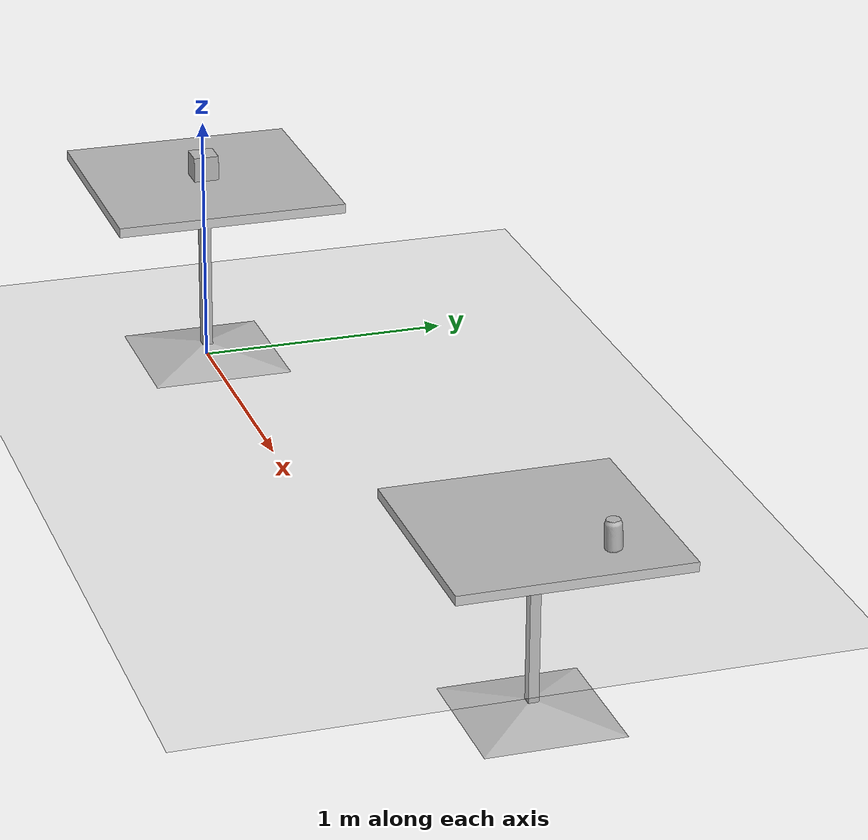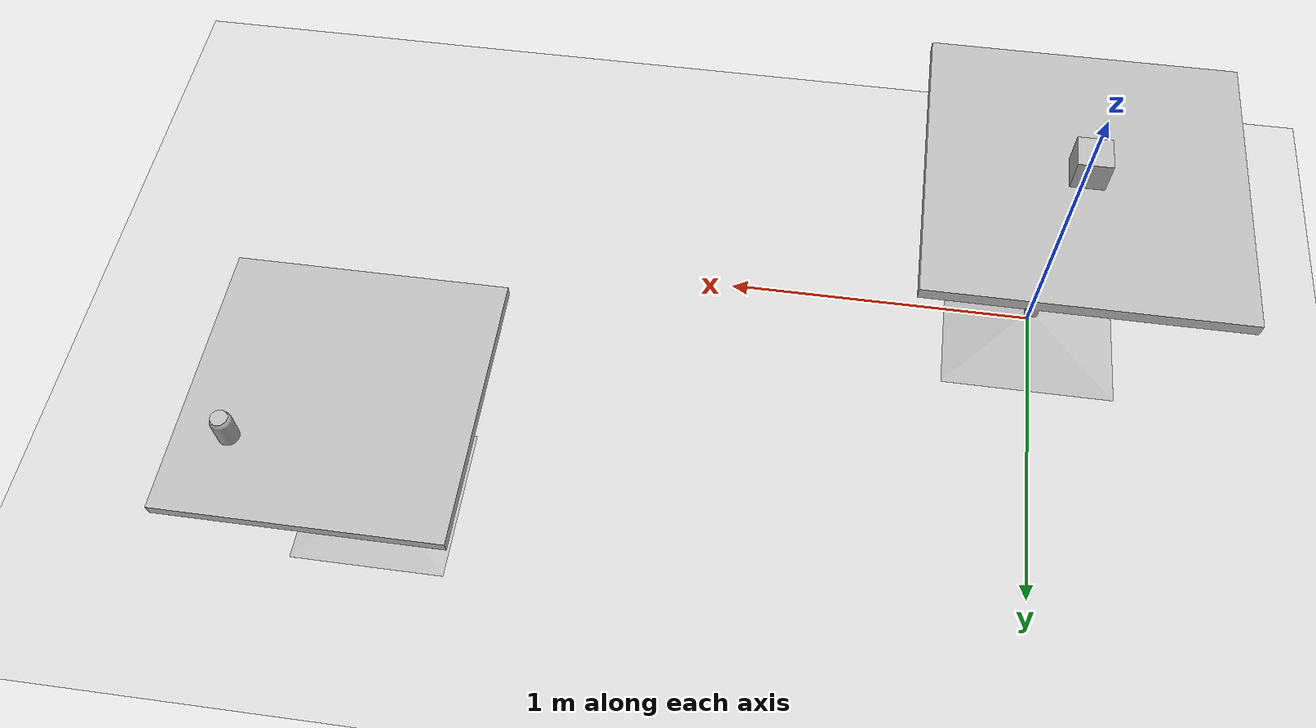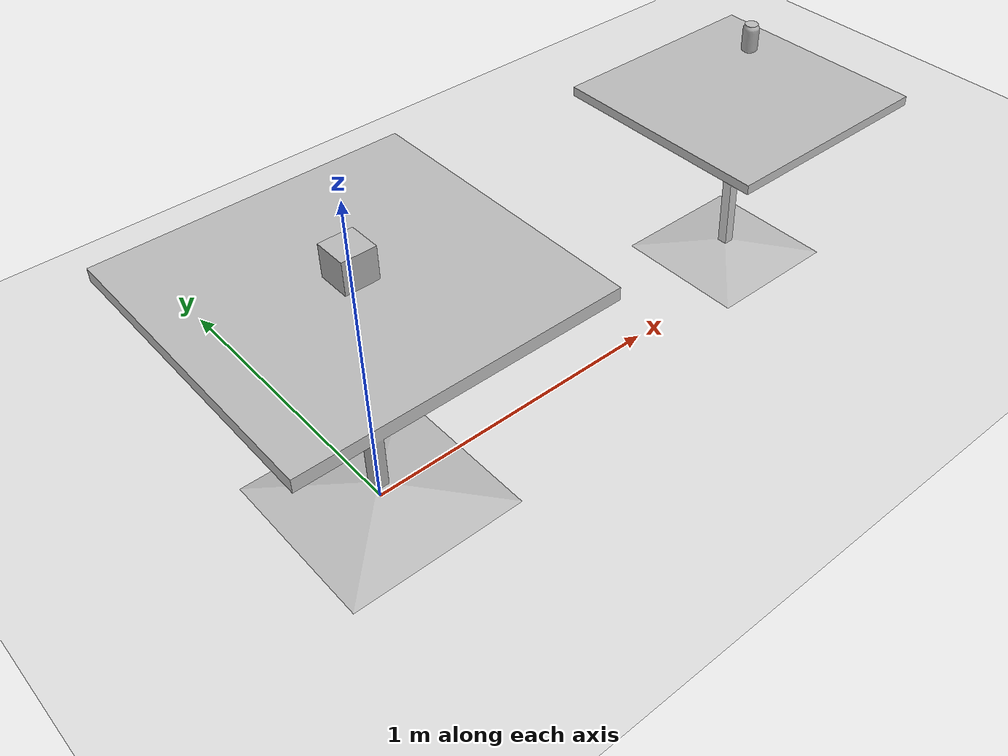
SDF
<sdf version="1.6">
 <world name="default">
  <model name="ground_plane">
   <static>1</static>
   <link name="link">
    <collision name="collision">
     <geometry><plane><normal>0 0 1</normal><size>100 100</size></plane></geometry>
     <surface>
      <contact><collide_bitmask>65535</collide_bitmask></contact>
      <friction><ode><mu>100</mu><mu2>50</mu2></ode></friction>
     </surface>
    </collision>
    <visual name="visual">
     <plugin name="panoramagrid" filename="libgazebo_hide_plugin.so"/>
     <cast_shadows>0</cast_shadows>
     <geometry><plane><normal>0 0 1</normal><size>100 100</size></plane></geometry>
     <material>
      <script><uri>file://media/materials/scripts/gazebo.material</uri><name>Gazebo/Grey</name></script>
     </material>
    </visual>
   </link>
  </model>
  <light name="sun" type="directional">
   <pose>0 0 10 0 -0 0</pose>
   <diffuse>0.8 0.8 0.8 1</diffuse>
   <specular>0.2 0.2 0.2 1</specular>
   <attenuation>
    <range>1000</range>
    <constant>0.9</constant>
    <linear>0.01</linear>
    <quadratic>0.001</quadratic>
   </attenuation>
   <direction>-0.5 0.1 -0.9</direction>
  </light>
  <gravity>0 0 -9.8</gravity>
  <magnetic_field>6e-06 2.3e-05 -4.2e-05</magnetic_field>
  <atmosphere type="adiabatic"/>
  <physics name="default_physics" default="0" type="ode">
   <max_step_size>0.001</max_step_size>
   <real_time_factor>1</real_time_factor>
   <real_time_update_rate>1000</real_time_update_rate>
  </physics>
  <scene><ambient>0.4 0.4 0.4 1</ambient><background>0.7 0.7 0.7 1</background><shadows>1</shadows></scene>
  <audio><device>default</device></audio>
  <spherical_coordinates>
   <surface_model>EARTH_WGS84</surface_model>
   <latitude_deg>0</latitude_deg>
   <longitude_deg>0</longitude_deg>
   <elevation>0</elevation>
   <heading_deg>0</heading_deg>
  </spherical_coordinates>
  <model name="cafe_table">
   <static>1</static>
   <link name="link">
    <collision name="surface">
     <pose>0 0 0.755 0 -0 0</pose>
     <geometry><box><size>0.913 0.913 0.04</size></box></geometry>
    </collision>
    <collision name="column">
     <pose>0 0 0.37 0 -0 0</pose>
     <geometry><box><size>0.042 0.042 0.74</size></box></geometry>
    </collision>
    <collision name="base">
     <pose>0 0 0.02 0 -0 0</pose>
     <geometry><box><size>0.56 0.56 0.04</size></box></geometry>
    </collision>
    <visual name="visual">
     <geometry><mesh><uri>model://cafe_table/meshes/cafe_table.dae</uri></mesh></geometry>
    </visual>
   </link>
   <pose>2.18177 0.655259 -0.631246 0 -0 0</pose>
  </model>
  <model name="camera">
   <pose>0 -0 0.825 0 -0 0</pose>
   <link name="camera::link">
    <inertial>
     <mass>0.1</mass>
     <inertia>
      <ixx>0.000166667</ixx>
      <iyy>0.000166667</iyy>
      <izz>0.000166667</izz>
      <ixy>0</ixy>
      <ixz>0</ixz>
      <iyz>0</iyz>
     </inertia>
    </inertial>
    <collision name="collision"><geometry><box><size>0.1 0.1 0.1</size></box></geometry></collision>
    <visual name="visual"><geometry><box><size>0.1 0.1 0.1</size></box></geometry></visual>
    <sensor name="camera" type="camera">
     <camera name="__default__">
      <horizontal_fov>1.047</horizontal_fov>
      <image><width>1920</width><height>1080</height></image>
      <clip><near>0.1</near><far>100</far></clip>
     </camera>
     <always_on>1</always_on>
     <update_rate>30</update_rate>
     <visualize>1</visualize>
     <plugin name="camera_controller" filename="libgazebo_ros_camera.so">
      <alwaysOn>1</alwaysOn>
      <updateRate>0.0</updateRate>
      <cameraName>gazebo_camera</cameraName>
      <imageTopicName>image_raw</imageTopicName>
      <cameraInfoTopicName>camera_info</cameraInfoTopicName>
      <frameName>camera_link</frameName>
      <hackBaseline>0.07</hackBaseline>
      <distortionK1>0.0</distortionK1>
      <distortionK2>0.0</distortionK2>
      <distortionK3>0.0</distortionK3>
      <distortionT1>0.0</distortionT1>
      <distortionT2>0.0</distortionT2>
     </plugin>
    </sensor>
   </link>
  </model>
  <model name="cafe_table_0">
   <static>1</static>
   <link name="link">
    <collision name="surface">
     <pose>0 0 0.755 0 -0 0</pose>
     <geometry><box><size>0.913 0.913 0.04</size></box></geometry>
    </collision>
    <collision name="column">
     <pose>0 0 0.37 0 -0 0</pose>
     <geometry><box><size>0.042 0.042 0.74</size></box></geometry>
    </collision>
    <collision name="base">
     <pose>0 0 0.02 0 -0 0</pose>
     <geometry><box><size>0.56 0.56 0.04</size></box></geometry>
    </collision>
    <visual name="visual">
     <plugin name="panoramagrid" filename="libgazebo_hide_plugin.so"/>
     <geometry><mesh><uri>model://cafe_table/meshes/cafe_table.dae</uri></mesh></geometry>
    </visual>
   </link>
  </model>
  <model name="coke_can">
   <link name="link">
    <inertial>
     <pose>0 0 0.06 0 -0 0</pose>
     <mass>0.39</mass>
     <inertia>
      <ixx>0.00055575</ixx>
      <ixy>0</ixy>
      <ixz>0</ixz>
      <iyy>0.00055575</iyy>
      <iyz>0</iyz>
      <izz>0.0001755</izz>
     </inertia>
    </inertial>
    <collision name="collision">
     <pose>0.003937 0.004724 -0.18 0 -0 0</pose>
     <geometry><mesh><uri>model://coke_can/meshes/coke_can.dae</uri></mesh></geometry>
     <surface>
      <friction><ode><mu>1</mu><mu2>1</mu2></ode></friction>
      <contact><ode><kp>1e+07</kp><kd>1</kd><min_depth>0.001</min_depth><max_vel>0.1</max_vel></ode></contact>
     </surface>
    </collision>
    <visual name="visual">
     <pose>0.003937 0.004724 -0.18 0 -0 0</pose>
     <geometry><mesh><uri>model://coke_can/meshes/coke_can.dae</uri></mesh></geometry>
    </visual>
   </link>
   <pose>2.46029 0.853593 0.140468 0.02644 -0.021467 0.014392</pose>
  </model>
 </world>
</sdf>
